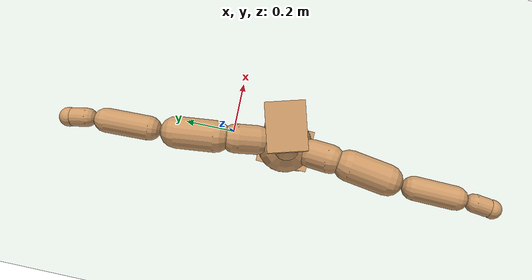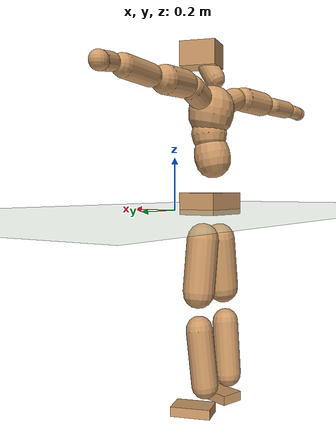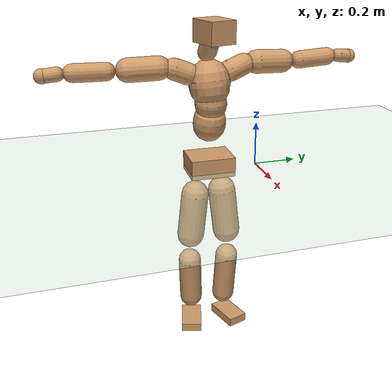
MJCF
<mujoco model="humanoid">
  <compiler coordinate="local" angle="radian"/>
  <default>
    <joint damping="0.0" armature="0.01" stiffness="0.0" limited="true"/>
    <geom conaffinity="1" condim="3" contype="7" margin="0.001" rgba="0.8 0.6 .4 1"/>
  </default>
  <asset>
    <texture type="skybox" builtin="gradient" rgb1=".4 .5 .6" rgb2="0 0 0" width="100" height="100"/>
    <texture builtin="flat" height="1278" mark="cross" markrgb="1 1 1" name="texgeom" random="0.01" rgb1="0.8 0.6 0.4" rgb2="0.8 0.6 0.4" type="cube" width="127"/>
    <texture builtin="checker" height="100" name="texplane" rgb1="0 0 0" rgb2="0.8 0.8 0.8" type="2d" width="100"/>
    <material name="MatPlane" reflectance="0.5" shininess="1" specular="1" texrepeat="60 60" texture="texplane"/>
    <material name="geom" texture="texgeom" texuniform="true"/>
  </asset>
  <worldbody>
    <light cutoff="100" diffuse="1 1 1" dir="-0 0 -1.3" directional="true" exponent="1" pos="0 0 1.3" specular=".1 .1 .1"/>
    <geom conaffinity="1" condim="3" name="floor" pos="0 0 0" rgba="0.8 0.9 0.8 1" size="100 100 .2" type="plane" material="MatPlane"/>
    <body name="Pelvis" pos="-0.0046 -0.2227 0.0286">
      <freejoint name="Pelvis"/>
      <geom type="box" contype="1" conaffinity="1" density="500" pos="-0.0119 0.0003 -0.0077" size="0.0823 0.1024 0.0445" quat="0.9999 0.0000 0.0000 -0.0116" name="Pelvis"/>
      <body name="L_Hip" pos="-0.0191 0.0573 -0.0784">
        <joint name="L_Hip_x" type="hinge" pos="0 0 0" axis="1 0 0" stiffness="800" damping="80" armature="0.02" range="-180.0000 180.0000"/>
        <joint name="L_Hip_y" type="hinge" pos="0 0 0" axis="0 1 0" stiffness="800" damping="80" armature="0.02" range="-180.0000 180.0000"/>
        <joint name="L_Hip_z" type="hinge" pos="0 0 0" axis="0 0 1" stiffness="800" damping="80" armature="0.02" range="-180.0000 180.0000"/>
        <geom type="capsule" contype="1" conaffinity="1" density="500" fromto="0.0015 0.0081 -0.0721 0.0060 0.0324 -0.2882" size="0.0647" name="L_Hip"/>
        <body name="L_Knee" pos="0.0075 0.0405 -0.3603">
          <joint name="L_Knee_x" type="hinge" pos="0 0 0" axis="1 0 0" stiffness="800" damping="80" armature="0.02" range="-180.0000 180.0000"/>
          <joint name="L_Knee_y" type="hinge" pos="0 0 0" axis="0 1 0" stiffness="800" damping="80" armature="0.02" range="-180.0000 180.0000"/>
          <joint name="L_Knee_z" type="hinge" pos="0 0 0" axis="0 0 1" stiffness="800" damping="80" armature="0.02" range="-180.0000 180.0000"/>
          <geom type="capsule" contype="1" conaffinity="1" density="500" fromto="-0.0073 -0.0027 -0.0770 -0.0291 -0.0106 -0.3081" size="0.0545" name="L_Knee"/>
          <body name="L_Ankle" pos="-0.0363 -0.0133 -0.3852">
            <joint name="L_Ankle_x" type="hinge" pos="0 0 0" axis="1 0 0" stiffness="800" damping="80" armature="0.02" range="-180.0000 180.0000"/>
            <joint name="L_Ankle_y" type="hinge" pos="0 0 0" axis="0 1 0" stiffness="800" damping="80" armature="0.02" range="-180.0000 180.0000"/>
            <joint name="L_Ankle_z" type="hinge" pos="0 0 0" axis="0 0 1" stiffness="800" damping="80" armature="0.02" range="-180.0000 180.0000"/>
            <geom type="box" contype="1" conaffinity="1" density="500" pos="0.0555 0.0177 -0.0271" size="0.0832 0.048 0.0201" quat="0.9881 0.0000 0.0000 0.1536" name="L_Ankle"/>
            <body name="L_Toe" pos="0.1109 0.0353 -0.0542">
              <joint name="L_Toe_x" type="hinge" pos="0 0 0" axis="1 0 0" stiffness="500" damping="50" armature="0.02" range="-180.0000 180.0000"/>
              <joint name="L_Toe_y" type="hinge" pos="0 0 0" axis="0 1 0" stiffness="500" damping="50" armature="0.02" range="-180.0000 180.0000"/>
              <joint name="L_Toe_z" type="hinge" pos="0 0 0" axis="0 0 1" stiffness="500" damping="50" armature="0.02" range="-180.0000 180.0000"/>
              <geom type="box" contype="1" conaffinity="1" density="500" pos="0.0000 0.0000 0.0250" size="0.001 0.0024 0.0009" quat="0.9873 0.0000 0.0000 0.1590" name="L_Toe"/>
            </body>
          </body>
        </body>
      </body>
      <body name="R_Hip" pos="-0.0138 -0.0598 -0.0862">
        <joint name="R_Hip_x" type="hinge" pos="0 0 0" axis="1 0 0" stiffness="800" damping="80" armature="0.02" range="-180.0000 180.0000"/>
        <joint name="R_Hip_y" type="hinge" pos="0 0 0" axis="0 1 0" stiffness="800" damping="80" armature="0.02" range="-180.0000 180.0000"/>
        <joint name="R_Hip_z" type="hinge" pos="0 0 0" axis="0 0 1" stiffness="800" damping="80" armature="0.02" range="-180.0000 180.0000"/>
        <geom type="capsule" contype="1" conaffinity="1" density="500" fromto="-0.0012 -0.0075 -0.0711 -0.0049 -0.0302 -0.2845" size="0.0639" name="R_Hip"/>
        <body name="R_Knee" pos="-0.0062 -0.0377 -0.3557">
          <joint name="R_Knee_x" type="hinge" pos="0 0 0" axis="1 0 0" stiffness="800" damping="80" armature="0.02" range="-180.0000 180.0000"/>
          <joint name="R_Knee_y" type="hinge" pos="0 0 0" axis="0 1 0" stiffness="800" damping="80" armature="0.02" range="-180.0000 180.0000"/>
          <joint name="R_Knee_z" type="hinge" pos="0 0 0" axis="0 0 1" stiffness="800" damping="80" armature="0.02" range="-180.0000 180.0000"/>
          <geom type="capsule" contype="1" conaffinity="1" density="500" fromto="-0.0070 0.0034 -0.0754 -0.0279 0.0137 -0.3017" size="0.0545" name="R_Knee"/>
          <body name="R_Ankle" pos="-0.0348 0.0171 -0.3771">
            <joint name="R_Ankle_x" type="hinge" pos="0 0 0" axis="1 0 0" stiffness="800" damping="80" armature="0.02" range="-180.0000 180.0000"/>
            <joint name="R_Ankle_y" type="hinge" pos="0 0 0" axis="0 1 0" stiffness="800" damping="80" armature="0.02" range="-180.0000 180.0000"/>
            <joint name="R_Ankle_z" type="hinge" pos="0 0 0" axis="0 0 1" stiffness="800" damping="80" armature="0.02" range="-180.0000 180.0000"/>
            <geom type="box" contype="1" conaffinity="1" density="500" pos="0.0594 -0.0164 -0.0266" size="0.0829 0.0484 0.02" quat="0.9910 0.0000 0.0000 -0.1340" name="R_Ankle"/>
            <body name="R_Toe" pos="0.1188 -0.0327 -0.0531">
              <joint name="R_Toe_x" type="hinge" pos="0 0 0" axis="1 0 0" stiffness="500" damping="50" armature="0.02" range="-180.0000 180.0000"/>
              <joint name="R_Toe_y" type="hinge" pos="0 0 0" axis="0 1 0" stiffness="500" damping="50" armature="0.02" range="-180.0000 180.0000"/>
              <joint name="R_Toe_z" type="hinge" pos="0 0 0" axis="0 0 1" stiffness="500" damping="50" armature="0.02" range="-180.0000 180.0000"/>
              <geom type="box" contype="1" conaffinity="1" density="500" pos="0.0000 0.0000 0.0261" size="0.001 0.0024 0.001" quat="0.9923 0.0000 0.0000 -0.1242" name="R_Toe"/>
            </body>
          </body>
        </body>
      </body>
      <body name="Torso" pos="-0.0387 0.0041 0.1182">
        <joint name="Torso_x" type="hinge" pos="0 0 0" axis="1 0 0" stiffness="1000" damping="100" armature="0.02" range="-180.0000 180.0000"/>
        <joint name="Torso_y" type="hinge" pos="0 0 0" axis="0 1 0" stiffness="1000" damping="100" armature="0.02" range="-180.0000 180.0000"/>
        <joint name="Torso_z" type="hinge" pos="0 0 0" axis="0 0 1" stiffness="1000" damping="100" armature="0.02" range="-180.0000 180.0000"/>
        <geom type="capsule" contype="1" conaffinity="1" density="500" fromto="0.0146 0.0025 0.0796 0.0097 0.0016 0.0530" size="0.0745" name="Torso"/>
        <body name="Spine" pos="0.0244 0.0041 0.1326">
          <joint name="Spine_x" type="hinge" pos="0 0 0" axis="1 0 0" stiffness="1000" damping="100" armature="0.02" range="-180.0000 180.0000"/>
          <joint name="Spine_y" type="hinge" pos="0 0 0" axis="0 1 0" stiffness="1000" damping="100" armature="0.02" range="-180.0000 180.0000"/>
          <joint name="Spine_z" type="hinge" pos="0 0 0" axis="0 0 1" stiffness="1000" damping="100" armature="0.02" range="-180.0000 180.0000"/>
          <geom type="capsule" contype="1" conaffinity="1" density="500" fromto="0.0030 -0.0006 0.0318 0.0020 -0.0004 0.0212" size="0.0727" name="Spine"/>
          <body name="Chest" pos="0.0049 -0.0009 0.0531">
            <joint name="Chest_x" type="hinge" pos="0 0 0" axis="1 0 0" stiffness="1000" damping="100" armature="0.02" range="-180.0000 180.0000"/>
            <joint name="Chest_y" type="hinge" pos="0 0 0" axis="0 1 0" stiffness="1000" damping="100" armature="0.02" range="-180.0000 180.0000"/>
            <joint name="Chest_z" type="hinge" pos="0 0 0" axis="0 0 1" stiffness="1000" damping="100" armature="0.02" range="-180.0000 180.0000"/>
            <geom type="capsule" contype="1" conaffinity="1" density="500" fromto="-0.0127 -0.0043 0.0763 -0.0085 -0.0029 0.0509" size="0.0927" name="Chest"/>
            <body name="Neck" pos="-0.031 -0.0126 0.1818">
              <joint name="Neck_x" type="hinge" pos="0 0 0" axis="1 0 0" stiffness="500" damping="50" armature="0.02" range="-180.0000 180.0000"/>
              <joint name="Neck_y" type="hinge" pos="0 0 0" axis="0 1 0" stiffness="500" damping="50" armature="0.02" range="-180.0000 180.0000"/>
              <joint name="Neck_z" type="hinge" pos="0 0 0" axis="0 0 1" stiffness="500" damping="50" armature="0.02" range="-180.0000 180.0000"/>
              <geom type="capsule" contype="1" conaffinity="1" density="500" fromto="0.0083 0.0020 0.0146 0.0331 0.0082 0.0584" size="0.0419" name="Neck"/>
              <body name="Head" pos="0.0414 0.0102 0.073">
                <joint name="Head_x" type="hinge" pos="0 0 0" axis="1 0 0" stiffness="500" damping="50" armature="0.02" range="-180.0000 180.0000"/>
                <joint name="Head_y" type="hinge" pos="0 0 0" axis="0 1 0" stiffness="500" damping="50" armature="0.02" range="-180.0000 180.0000"/>
                <joint name="Head_z" type="hinge" pos="0 0 0" axis="0 0 1" stiffness="500" damping="50" armature="0.02" range="-180.0000 180.0000"/>
                <geom type="box" contype="1" conaffinity="1" density="500" pos="0.0217 0.0061 0.0375" size="0.0748 0.0606 0.0494" quat="0.9906 0.0000 0.0000 0.1368" name="Head"/>
              </body>
            </body>
            <body name="L_Thorax" pos="-0.0126 0.0663 0.1012">
              <joint name="L_Thorax_x" type="hinge" pos="0 0 0" axis="1 0 0" stiffness="500" damping="50" armature="0.02" range="-180.0000 180.0000"/>
              <joint name="L_Thorax_y" type="hinge" pos="0 0 0" axis="0 1 0" stiffness="500" damping="50" armature="0.02" range="-180.0000 180.0000"/>
              <joint name="L_Thorax_z" type="hinge" pos="0 0 0" axis="0 0 1" stiffness="500" damping="50" armature="0.02" range="-180.0000 180.0000"/>
              <geom type="capsule" contype="1" conaffinity="1" density="500" fromto="-0.0036 0.0231 0.0081 -0.0143 0.0924 0.0324" size="0.049" name="L_Thorax"/>
              <body name="L_Shoulder" pos="-0.0179 0.1155 0.0405">
                <joint name="L_Shoulder_x" type="hinge" pos="0 0 0" axis="1 0 0" stiffness="500" damping="50" armature="0.02" range="-720.0000 720.0000"/>
                <joint name="L_Shoulder_y" type="hinge" pos="0 0 0" axis="0 1 0" stiffness="500" damping="50" armature="0.02" range="-720.0000 720.0000"/>
                <joint name="L_Shoulder_z" type="hinge" pos="0 0 0" axis="0 0 1" stiffness="500" damping="50" armature="0.02" range="-720.0000 720.0000"/>
                <geom type="capsule" contype="1" conaffinity="1" density="500" fromto="-0.0045 0.0430 -0.0023 -0.0181 0.1718 -0.0090" size="0.0533" name="L_Shoulder"/>
                <body name="L_Elbow" pos="-0.0226 0.2148 -0.0113">
                  <joint name="L_Elbow_x" type="hinge" pos="0 0 0" axis="1 0 0" stiffness="500" damping="50" armature="0.02" range="-720.0000 720.0000"/>
                  <joint name="L_Elbow_y" type="hinge" pos="0 0 0" axis="0 1 0" stiffness="500" damping="50" armature="0.02" range="-720.0000 720.0000"/>
                  <joint name="L_Elbow_z" type="hinge" pos="0 0 0" axis="0 0 1" stiffness="500" damping="50" armature="0.02" range="-720.0000 720.0000"/>
                  <geom type="capsule" contype="1" conaffinity="1" density="500" fromto="-0.0013 0.0470 0.0022 -0.0053 0.1881 0.0090" size="0.0405" name="L_Elbow"/>
                  <body name="L_Wrist" pos="-0.0066 0.2351 0.0112">
                    <joint name="L_Wrist_x" type="hinge" pos="0 0 0" axis="1 0 0" stiffness="300" damping="30" armature="0.02" range="-180.0000 180.0000"/>
                    <joint name="L_Wrist_y" type="hinge" pos="0 0 0" axis="0 1 0" stiffness="300" damping="30" armature="0.02" range="-180.0000 180.0000"/>
                    <joint name="L_Wrist_z" type="hinge" pos="0 0 0" axis="0 0 1" stiffness="300" damping="30" armature="0.02" range="-180.0000 180.0000"/>
                    <geom type="capsule" contype="1" conaffinity="1" density="500" fromto="-0.0028 0.0156 -0.0020 -0.0111 0.0624 -0.0080" size="0.031" name="L_Wrist"/>
                    <body name="L_Hand" pos="-0.0139 0.078 -0.0101">
                      <joint name="L_Hand_x" type="hinge" pos="0 0 0" axis="1 0 0" stiffness="300" damping="30" armature="0.02" range="-180.0000 180.0000"/>
                      <joint name="L_Hand_y" type="hinge" pos="0 0 0" axis="0 1 0" stiffness="300" damping="30" armature="0.02" range="-180.0000 180.0000"/>
                      <joint name="L_Hand_z" type="hinge" pos="0 0 0" axis="0 0 1" stiffness="300" damping="30" armature="0.02" range="-180.0000 180.0000"/>
                      <geom type="sphere" contype="1" conaffinity="1" density="500" size="0.0321" pos="0.0000 0.0000 0.0000" name="L_Hand"/>
                    </body>
                  </body>
                </body>
              </body>
            </body>
            <body name="R_Thorax" pos="-0.0199 -0.0754 0.0986">
              <joint name="R_Thorax_x" type="hinge" pos="0 0 0" axis="1 0 0" stiffness="500" damping="50" armature="0.02" range="-180.0000 180.0000"/>
              <joint name="R_Thorax_y" type="hinge" pos="0 0 0" axis="0 1 0" stiffness="500" damping="50" armature="0.02" range="-180.0000 180.0000"/>
              <joint name="R_Thorax_z" type="hinge" pos="0 0 0" axis="0 0 1" stiffness="500" damping="50" armature="0.02" range="-180.0000 180.0000"/>
              <geom type="capsule" contype="1" conaffinity="1" density="500" fromto="-0.0018 -0.0209 0.0082 -0.0073 -0.0835 0.0329" size="0.0484" name="R_Thorax"/>
              <body name="R_Shoulder" pos="-0.0092 -0.1044 0.0411">
                <joint name="R_Shoulder_x" type="hinge" pos="0 0 0" axis="1 0 0" stiffness="500" damping="50" armature="0.02" range="-720.0000 720.0000"/>
                <joint name="R_Shoulder_y" type="hinge" pos="0 0 0" axis="0 1 0" stiffness="500" damping="50" armature="0.02" range="-720.0000 720.0000"/>
                <joint name="R_Shoulder_z" type="hinge" pos="0 0 0" axis="0 0 1" stiffness="500" damping="50" armature="0.02" range="-720.0000 720.0000"/>
                <geom type="capsule" contype="1" conaffinity="1" density="500" fromto="-0.0065 -0.0438 -0.0018 -0.0259 -0.1750 -0.0071" size="0.0529" name="R_Shoulder"/>
                <body name="R_Elbow" pos="-0.0323 -0.2188 -0.0089">
                  <joint name="R_Elbow_x" type="hinge" pos="0 0 0" axis="1 0 0" stiffness="500" damping="50" armature="0.02" range="-720.0000 720.0000"/>
                  <joint name="R_Elbow_y" type="hinge" pos="0 0 0" axis="0 1 0" stiffness="500" damping="50" armature="0.02" range="-720.0000 720.0000"/>
                  <joint name="R_Elbow_z" type="hinge" pos="0 0 0" axis="0 0 1" stiffness="500" damping="50" armature="0.02" range="-720.0000 720.0000"/>
                  <geom type="capsule" contype="1" conaffinity="1" density="500" fromto="-0.0010 -0.0469 0.0005 -0.0040 -0.1876 0.0020" size="0.0402" name="R_Elbow"/>
                  <body name="R_Wrist" pos="-0.005 -0.2345 0.0025">
                    <joint name="R_Wrist_x" type="hinge" pos="0 0 0" axis="1 0 0" stiffness="300" damping="30" armature="0.02" range="-180.0000 180.0000"/>
                    <joint name="R_Wrist_y" type="hinge" pos="0 0 0" axis="0 1 0" stiffness="300" damping="30" armature="0.02" range="-180.0000 180.0000"/>
                    <joint name="R_Wrist_z" type="hinge" pos="0 0 0" axis="0 0 1" stiffness="300" damping="30" armature="0.02" range="-180.0000 180.0000"/>
                    <geom type="capsule" contype="1" conaffinity="1" density="500" fromto="-0.0018 -0.0157 -0.0016 -0.0072 -0.0630 -0.0063" size="0.031" name="R_Wrist"/>
                    <body name="R_Hand" pos="-0.009 -0.0787 -0.0078">
                      <joint name="R_Hand_x" type="hinge" pos="0 0 0" axis="1 0 0" stiffness="300" damping="30" armature="0.02" range="-180.0000 180.0000"/>
                      <joint name="R_Hand_y" type="hinge" pos="0 0 0" axis="0 1 0" stiffness="300" damping="30" armature="0.02" range="-180.0000 180.0000"/>
                      <joint name="R_Hand_z" type="hinge" pos="0 0 0" axis="0 0 1" stiffness="300" damping="30" armature="0.02" range="-180.0000 180.0000"/>
                      <geom type="sphere" contype="1" conaffinity="1" density="500" size="0.0321" pos="0.0000 0.0000 0.0000" name="R_Hand"/>
                    </body>
                  </body>
                </body>
              </body>
            </body>
          </body>
        </body>
      </body>
    </body>
  </worldbody>
  <actuator>
    <motor name="L_Hip_x" joint="L_Hip_x" gear="500"/>
    <motor name="L_Hip_y" joint="L_Hip_y" gear="500"/>
    <motor name="L_Hip_z" joint="L_Hip_z" gear="500"/>
    <motor name="L_Knee_x" joint="L_Knee_x" gear="500"/>
    <motor name="L_Knee_y" joint="L_Knee_y" gear="500"/>
    <motor name="L_Knee_z" joint="L_Knee_z" gear="500"/>
    <motor name="L_Ankle_x" joint="L_Ankle_x" gear="500"/>
    <motor name="L_Ankle_y" joint="L_Ankle_y" gear="500"/>
    <motor name="L_Ankle_z" joint="L_Ankle_z" gear="500"/>
    <motor name="L_Toe_x" joint="L_Toe_x" gear="500"/>
    <motor name="L_Toe_y" joint="L_Toe_y" gear="500"/>
    <motor name="L_Toe_z" joint="L_Toe_z" gear="500"/>
    <motor name="R_Hip_x" joint="R_Hip_x" gear="500"/>
    <motor name="R_Hip_y" joint="R_Hip_y" gear="500"/>
    <motor name="R_Hip_z" joint="R_Hip_z" gear="500"/>
    <motor name="R_Knee_x" joint="R_Knee_x" gear="500"/>
    <motor name="R_Knee_y" joint="R_Knee_y" gear="500"/>
    <motor name="R_Knee_z" joint="R_Knee_z" gear="500"/>
    <motor name="R_Ankle_x" joint="R_Ankle_x" gear="500"/>
    <motor name="R_Ankle_y" joint="R_Ankle_y" gear="500"/>
    <motor name="R_Ankle_z" joint="R_Ankle_z" gear="500"/>
    <motor name="R_Toe_x" joint="R_Toe_x" gear="500"/>
    <motor name="R_Toe_y" joint="R_Toe_y" gear="500"/>
    <motor name="R_Toe_z" joint="R_Toe_z" gear="500"/>
    <motor name="Torso_x" joint="Torso_x" gear="500"/>
    <motor name="Torso_y" joint="Torso_y" gear="500"/>
    <motor name="Torso_z" joint="Torso_z" gear="500"/>
    <motor name="Spine_x" joint="Spine_x" gear="500"/>
    <motor name="Spine_y" joint="Spine_y" gear="500"/>
    <motor name="Spine_z" joint="Spine_z" gear="500"/>
    <motor name="Chest_x" joint="Chest_x" gear="500"/>
    <motor name="Chest_y" joint="Chest_y" gear="500"/>
    <motor name="Chest_z" joint="Chest_z" gear="500"/>
    <motor name="Neck_x" joint="Neck_x" gear="500"/>
    <motor name="Neck_y" joint="Neck_y" gear="500"/>
    <motor name="Neck_z" joint="Neck_z" gear="500"/>
    <motor name="Head_x" joint="Head_x" gear="500"/>
    <motor name="Head_y" joint="Head_y" gear="500"/>
    <motor name="Head_z" joint="Head_z" gear="500"/>
    <motor name="L_Thorax_x" joint="L_Thorax_x" gear="500"/>
    <motor name="L_Thorax_y" joint="L_Thorax_y" gear="500"/>
    <motor name="L_Thorax_z" joint="L_Thorax_z" gear="500"/>
    <motor name="L_Shoulder_x" joint="L_Shoulder_x" gear="500"/>
    <motor name="L_Shoulder_y" joint="L_Shoulder_y" gear="500"/>
    <motor name="L_Shoulder_z" joint="L_Shoulder_z" gear="500"/>
    <motor name="L_Elbow_x" joint="L_Elbow_x" gear="500"/>
    <motor name="L_Elbow_y" joint="L_Elbow_y" gear="500"/>
    <motor name="L_Elbow_z" joint="L_Elbow_z" gear="500"/>
    <motor name="L_Wrist_x" joint="L_Wrist_x" gear="500"/>
    <motor name="L_Wrist_y" joint="L_Wrist_y" gear="500"/>
    <motor name="L_Wrist_z" joint="L_Wrist_z" gear="500"/>
    <motor name="L_Hand_x" joint="L_Hand_x" gear="500"/>
    <motor name="L_Hand_y" joint="L_Hand_y" gear="500"/>
    <motor name="L_Hand_z" joint="L_Hand_z" gear="500"/>
    <motor name="R_Thorax_x" joint="R_Thorax_x" gear="500"/>
    <motor name="R_Thorax_y" joint="R_Thorax_y" gear="500"/>
    <motor name="R_Thorax_z" joint="R_Thorax_z" gear="500"/>
    <motor name="R_Shoulder_x" joint="R_Shoulder_x" gear="500"/>
    <motor name="R_Shoulder_y" joint="R_Shoulder_y" gear="500"/>
    <motor name="R_Shoulder_z" joint="R_Shoulder_z" gear="500"/>
    <motor name="R_Elbow_x" joint="R_Elbow_x" gear="500"/>
    <motor name="R_Elbow_y" joint="R_Elbow_y" gear="500"/>
    <motor name="R_Elbow_z" joint="R_Elbow_z" gear="500"/>
    <motor name="R_Wrist_x" joint="R_Wrist_x" gear="500"/>
    <motor name="R_Wrist_y" joint="R_Wrist_y" gear="500"/>
    <motor name="R_Wrist_z" joint="R_Wrist_z" gear="500"/>
    <motor name="R_Hand_x" joint="R_Hand_x" gear="500"/>
    <motor name="R_Hand_y" joint="R_Hand_y" gear="500"/>
    <motor name="R_Hand_z" joint="R_Hand_z" gear="500"/>
  </actuator>
  <contact>
    <exclude body1="Torso" body2="Chest"/>
    <exclude body1="Head" body2="Chest"/>
    <exclude body1="R_Knee" body2="R_Toe"/>
    <exclude body1="R_Knee" body2="L_Ankle"/>
    <exclude body1="R_Knee" body2="L_Toe"/>
    <exclude body1="L_Knee" body2="L_Toe"/>
    <exclude body1="L_Knee" body2="R_Ankle"/>
    <exclude body1="L_Knee" body2="R_Toe"/>
    <exclude body1="L_Shoulder" body2="Chest"/>
    <exclude body1="R_Shoulder" body2="Chest"/>
  </contact>
  <sensor/>
  <size njmax="700" nconmax="700"/>
</mujoco>
